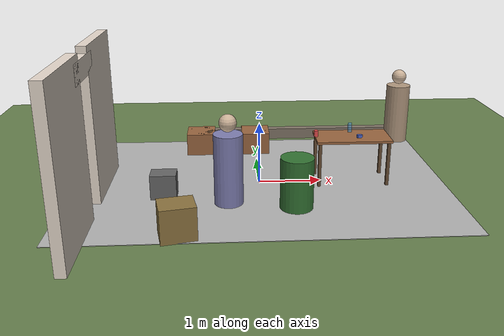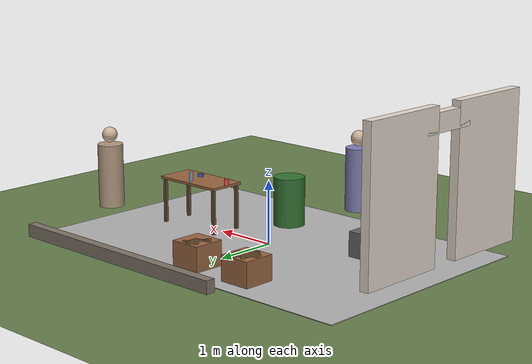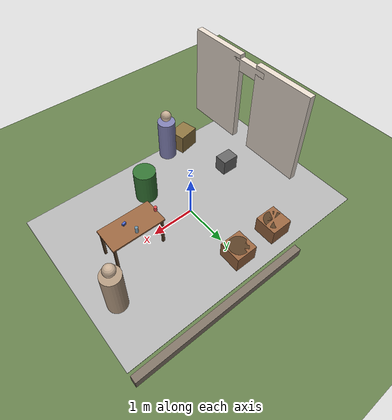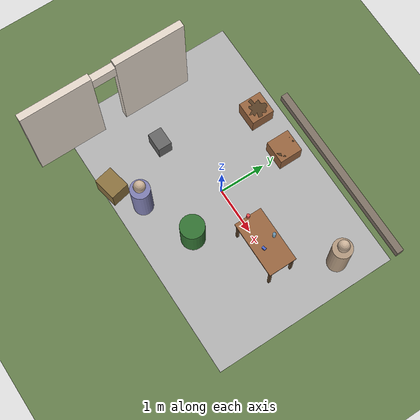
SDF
<?xml version="1.0" ?>
<sdf version="1.8">
  <world name="garden_world">

    <!-- Physics -->
    <physics name="default_physics" type="ode">
      <max_step_size>0.004</max_step_size>
      <real_time_factor>1.0</real_time_factor>
      <real_time_update_rate>250</real_time_update_rate>
    </physics>

    <!-- Required system plugins -->
    <plugin filename="gz-sim-physics-system" name="gz::sim::systems::Physics"/>
    <plugin filename="gz-sim-user-commands-system" name="gz::sim::systems::UserCommands"/>
    <plugin filename="gz-sim-scene-broadcaster-system" name="gz::sim::systems::SceneBroadcaster"/>
    <plugin filename="gz-sim-sensors-system" name="gz::sim::systems::Sensors">
      <render_engine>ogre2</render_engine>
    </plugin>
    <plugin filename="gz-sim-imu-system" name="gz::sim::systems::Imu"/>
    <plugin filename="gz-sim-contact-system" name="gz::sim::systems::Contact"/>

    <!-- Lighting -->
    <light type="directional" name="sun">
      <cast_shadows>true</cast_shadows>
      <pose>0 0 10 0 0 0</pose>
      <diffuse>0.9 0.9 0.85 1</diffuse>
      <specular>0.3 0.3 0.3 1</specular>
      <direction>-0.5 0.1 -0.9</direction>
      <attenuation>
        <range>1000</range>
        <constant>0.9</constant>
        <linear>0.01</linear>
        <quadratic>0.001</quadratic>
      </attenuation>
    </light>

    <light type="directional" name="fill_light">
      <cast_shadows>false</cast_shadows>
      <pose>0 0 8 0 0 0</pose>
      <diffuse>0.3 0.3 0.35 1</diffuse>
      <specular>0.05 0.05 0.05 1</specular>
      <direction>0.5 -0.3 -0.7</direction>
    </light>

    <!-- Ground plane -->
    <model name="ground_plane">
      <static>true</static>
      <link name="link">
        <collision name="collision">
          <geometry><plane><normal>0 0 1</normal><size>50 50</size></plane></geometry>
        </collision>
        <visual name="visual">
          <geometry><plane><normal>0 0 1</normal><size>50 50</size></plane></geometry>
          <material>
            <ambient>0.35 0.45 0.25 1</ambient>
            <diffuse>0.4 0.5 0.3 1</diffuse>
          </material>
        </visual>
      </link>
    </model>

    <!-- Indoor area: concrete patio slab                             -->
    <model name="patio">
      <static>true</static>
      <pose>0 0 0.005 0 0 0</pose>
      <link name="link">
        <collision name="collision">
          <geometry><box><size>6 4 0.01</size></box></geometry>
        </collision>
        <visual name="visual">
          <geometry><box><size>6 4 0.01</size></box></geometry>
          <material>
            <ambient>0.6 0.6 0.6 1</ambient>
            <diffuse>0.7 0.7 0.7 1</diffuse>
          </material>
        </visual>
      </link>
    </model>

    <!-- Table (work surface for pick-place)                          -->
    <model name="table">
      <static>true</static>
      <pose>1.5 0 0 0 0 0</pose>
      <link name="link">
        <!-- Table top -->
        <collision name="top_collision">
          <pose>0 0 0.75 0 0 0</pose>
          <geometry><box><size>1.2 0.6 0.04</size></box></geometry>
        </collision>
        <visual name="top_visual">
          <pose>0 0 0.75 0 0 0</pose>
          <geometry><box><size>1.2 0.6 0.04</size></box></geometry>
          <material>
            <ambient>0.5 0.35 0.2 1</ambient>
            <diffuse>0.6 0.4 0.25 1</diffuse>
          </material>
        </visual>
        <!-- Legs -->
        <collision name="leg1"><pose>0.55 0.25 0.365 0 0 0</pose><geometry><box><size>0.05 0.05 0.73</size></box></geometry></collision>
        <visual name="leg1_v"><pose>0.55 0.25 0.365 0 0 0</pose><geometry><box><size>0.05 0.05 0.73</size></box></geometry><material><diffuse>0.4 0.3 0.2 1</diffuse></material></visual>
        <collision name="leg2"><pose>-0.55 0.25 0.365 0 0 0</pose><geometry><box><size>0.05 0.05 0.73</size></box></geometry></collision>
        <visual name="leg2_v"><pose>-0.55 0.25 0.365 0 0 0</pose><geometry><box><size>0.05 0.05 0.73</size></box></geometry><material><diffuse>0.4 0.3 0.2 1</diffuse></material></visual>
        <collision name="leg3"><pose>0.55 -0.25 0.365 0 0 0</pose><geometry><box><size>0.05 0.05 0.73</size></box></geometry></collision>
        <visual name="leg3_v"><pose>0.55 -0.25 0.365 0 0 0</pose><geometry><box><size>0.05 0.05 0.73</size></box></geometry><material><diffuse>0.4 0.3 0.2 1</diffuse></material></visual>
        <collision name="leg4"><pose>-0.55 -0.25 0.365 0 0 0</pose><geometry><box><size>0.05 0.05 0.73</size></box></geometry></collision>
        <visual name="leg4_v"><pose>-0.55 -0.25 0.365 0 0 0</pose><geometry><box><size>0.05 0.05 0.73</size></box></geometry><material><diffuse>0.4 0.3 0.2 1</diffuse></material></visual>
      </link>
    </model>

    <!-- Graspable objects on table                                   -->
    <!-- Small cup -->
    <model name="cup">
      <pose>0.915 0.0 0.82 0 0 0</pose>
      <link name="link">
        <inertial><mass>0.15</mass><inertia><ixx>0.0002</ixx><iyy>0.0002</iyy><izz>0.0001</izz></inertia></inertial>
        <collision name="collision"><geometry><cylinder><radius>0.035</radius><length>0.10</length></cylinder></geometry></collision>
        <visual name="visual"><geometry><cylinder><radius>0.035</radius><length>0.10</length></cylinder></geometry>
          <material><ambient>0.8 0.2 0.2 1</ambient><diffuse>0.9 0.3 0.3 1</diffuse></material>
        </visual>
      </link>
    </model>

    <!-- Small box (medicine box size) -->
    <model name="small_box">
      <pose>1.6 -0.1 0.79 0 0 0.3</pose>
      <link name="link">
        <inertial><mass>0.2</mass><inertia><ixx>0.0002</ixx><iyy>0.0003</iyy><izz>0.0002</izz></inertia></inertial>
        <collision name="collision"><geometry><box><size>0.08 0.05 0.06</size></box></geometry></collision>
        <visual name="visual"><geometry><box><size>0.08 0.05 0.06</size></box></geometry>
          <material><ambient>0.2 0.3 0.7 1</ambient><diffuse>0.3 0.4 0.8 1</diffuse></material>
        </visual>
      </link>
    </model>

    <!-- Water bottle -->
    <model name="bottle">
      <pose>1.5 0.2 0.82 0 0 0</pose>
      <link name="link">
        <inertial><mass>0.35</mass><inertia><ixx>0.0005</ixx><iyy>0.0005</iyy><izz>0.0001</izz></inertia></inertial>
        <collision name="collision"><geometry><cylinder><radius>0.032</radius><length>0.20</length></cylinder></geometry></collision>
        <visual name="visual"><geometry><cylinder><radius>0.032</radius><length>0.20</length></cylinder></geometry>
          <material><ambient>0.3 0.6 0.8 1</ambient><diffuse>0.4 0.7 0.9 0.7</diffuse></material>
        </visual>
      </link>
    </model>

    <!-- Planters (garden context)                                    -->
    <model name="planter_1">
      <static>true</static>
      <pose>-1.0 1.5 0.2 0 0 0</pose>
      <link name="link">
        <collision name="collision"><geometry><box><size>0.5 0.5 0.4</size></box></geometry></collision>
        <visual name="visual"><geometry><box><size>0.5 0.5 0.4</size></box></geometry>
          <material><ambient>0.55 0.35 0.2 1</ambient><diffuse>0.6 0.4 0.25 1</diffuse></material>
        </visual>
        <!-- Soil/plant on top -->
        <visual name="soil"><pose>0 0 0.18 0 0 0</pose><geometry><cylinder><radius>0.22</radius><length>0.04</length></cylinder></geometry>
          <material><ambient>0.3 0.2 0.1 1</ambient><diffuse>0.35 0.25 0.15 1</diffuse></material>
        </visual>
      </link>
    </model>

    <model name="planter_2">
      <static>true</static>
      <pose>0.0 1.5 0.2 0 0 0</pose>
      <link name="link">
        <collision name="collision"><geometry><box><size>0.5 0.5 0.4</size></box></geometry></collision>
        <visual name="visual"><geometry><box><size>0.5 0.5 0.4</size></box></geometry>
          <material><ambient>0.55 0.35 0.2 1</ambient><diffuse>0.6 0.4 0.25 1</diffuse></material>
        </visual>
        <visual name="soil"><pose>0 0 0.18 0 0 0</pose><geometry><cylinder><radius>0.22</radius><length>0.04</length></cylinder></geometry>
          <material><ambient>0.3 0.2 0.1 1</ambient><diffuse>0.35 0.25 0.15 1</diffuse></material>
        </visual>
      </link>
    </model>

    <!-- Collection bin                                               -->
    <model name="bin">
      <static>true</static>
      <pose>-1.5 -0.5 0.2 0 0 0</pose>
      <link name="link">
        <collision name="collision"><geometry><box><size>0.4 0.3 0.4</size></box></geometry></collision>
        <visual name="visual"><geometry><box><size>0.4 0.3 0.4</size></box></geometry>
          <material><ambient>0.3 0.3 0.3 1</ambient><diffuse>0.4 0.4 0.4 1</diffuse></material>
        </visual>
      </link>
    </model>

    <!-- Doorway / wall section                                       -->
    <model name="wall_left">
      <static>true</static>
      <pose>-2.5 0 1.2 0 0 0</pose>
      <link name="link">
        <collision name="collision"><geometry><box><size>0.15 1.5 2.4</size></box></geometry></collision>
        <visual name="visual"><geometry><box><size>0.15 1.5 2.4</size></box></geometry>
          <material><ambient>0.85 0.8 0.75 1</ambient><diffuse>0.9 0.85 0.8 1</diffuse></material>
        </visual>
      </link>
    </model>

    <model name="wall_right">
      <static>true</static>
      <pose>-2.5 -2.0 1.2 0 0 0</pose>
      <link name="link">
        <collision name="collision"><geometry><box><size>0.15 1.5 2.4</size></box></geometry></collision>
        <visual name="visual"><geometry><box><size>0.15 1.5 2.4</size></box></geometry>
          <material><ambient>0.85 0.8 0.75 1</ambient><diffuse>0.9 0.85 0.8 1</diffuse></material>
        </visual>
      </link>
    </model>

    <!-- Door lintel -->
    <model name="door_lintel">
      <static>true</static>
      <pose>-2.5 -1.0 2.15 0 0 0</pose>
      <link name="link">
        <collision name="collision"><geometry><box><size>0.15 1.0 0.3</size></box></geometry></collision>
        <visual name="visual"><geometry><box><size>0.15 1.0 0.3</size></box></geometry>
          <material><ambient>0.85 0.8 0.75 1</ambient><diffuse>0.9 0.85 0.8 1</diffuse></material>
        </visual>
      </link>
    </model>

    <!-- Human stand-ins (simple cylinders for proximity testing)     -->
    <model name="human_standin_1">
      <static>true</static>
      <pose>2.5 1.0 0.85 0 0 0</pose>
      <link name="link">
        <!-- Torso -->
        <collision name="torso"><geometry><cylinder><radius>0.2</radius><length>1.0</length></cylinder></geometry></collision>
        <visual name="torso"><geometry><cylinder><radius>0.2</radius><length>1.0</length></cylinder></geometry>
          <material><ambient>0.6 0.5 0.4 1</ambient><diffuse>0.7 0.6 0.5 1</diffuse></material>
        </visual>
        <!-- Head -->
        <collision name="head"><pose>0 0 0.65 0 0 0</pose><geometry><sphere><radius>0.12</radius></sphere></geometry></collision>
        <visual name="head"><pose>0 0 0.65 0 0 0</pose><geometry><sphere><radius>0.12</radius></sphere></geometry>
          <material><ambient>0.7 0.6 0.5 1</ambient><diffuse>0.8 0.7 0.6 1</diffuse></material>
        </visual>
      </link>
    </model>

    <model name="human_standin_2">
      <static>true</static>
      <pose>-0.5 -1.5 0.85 0 0 0.5</pose>
      <link name="link">
        <collision name="torso"><geometry><cylinder><radius>0.2</radius><length>1.0</length></cylinder></geometry></collision>
        <visual name="torso"><geometry><cylinder><radius>0.2</radius><length>1.0</length></cylinder></geometry>
          <material><ambient>0.4 0.4 0.6 1</ambient><diffuse>0.5 0.5 0.7 1</diffuse></material>
        </visual>
        <collision name="head"><pose>0 0 0.65 0 0 0</pose><geometry><sphere><radius>0.12</radius></sphere></geometry></collision>
        <visual name="head"><pose>0 0 0.65 0 0 0</pose><geometry><sphere><radius>0.12</radius></sphere></geometry>
          <material><ambient>0.7 0.6 0.5 1</ambient><diffuse>0.8 0.7 0.6 1</diffuse></material>
        </visual>
      </link>
    </model>

    <!-- Additional obstacles for Nav2 testing                        -->
    <model name="obstacle_barrel">
      <static>true</static>
      <pose>0.5 -1.0 0.4 0 0 0</pose>
      <link name="link">
        <collision name="collision"><geometry><cylinder><radius>0.25</radius><length>0.8</length></cylinder></geometry></collision>
        <visual name="visual"><geometry><cylinder><radius>0.25</radius><length>0.8</length></cylinder></geometry>
          <material><ambient>0.15 0.35 0.15 1</ambient><diffuse>0.2 0.45 0.2 1</diffuse></material>
        </visual>
      </link>
    </model>

    <model name="obstacle_crate">
      <static>true</static>
      <pose>-1.2 -1.8 0.25 0 0 0.2</pose>
      <link name="link">
        <collision name="collision"><geometry><box><size>0.5 0.4 0.5</size></box></geometry></collision>
        <visual name="visual"><geometry><box><size>0.5 0.4 0.5</size></box></geometry>
          <material><ambient>0.5 0.4 0.2 1</ambient><diffuse>0.55 0.45 0.25 1</diffuse></material>
        </visual>
      </link>
    </model>

    <!-- Low garden wall / border -->
    <model name="garden_border">
      <static>true</static>
      <pose>1.0 2.2 0.1 0 0 0</pose>
      <link name="link">
        <collision name="collision"><geometry><box><size>4.0 0.15 0.2</size></box></geometry></collision>
        <visual name="visual"><geometry><box><size>4.0 0.15 0.2</size></box></geometry>
          <material><ambient>0.45 0.4 0.35 1</ambient><diffuse>0.5 0.45 0.4 1</diffuse></material>
        </visual>
      </link>
    </model>

  </world>
</sdf>
